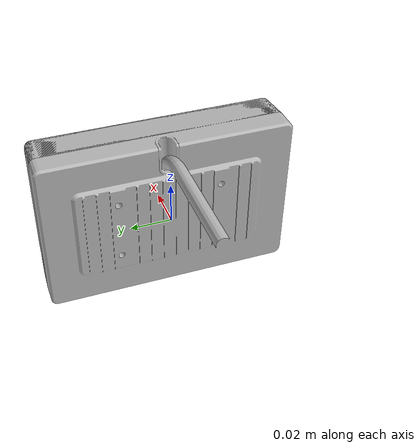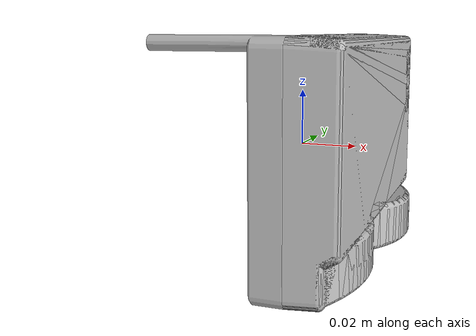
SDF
<?xml version="1.0" ?>
<sdf version="1.11">
  <model name="wl_sonar_3d">
    <link name="base_link">
      <inertial>
        <mass>0.0001</mass>
        <inertia>
          <ixx>1e-09</ixx>
          <ixy>0</ixy>
          <ixz>0</ixz>
          <iyy>1e-09</iyy>
          <iyz>0</iyz>
          <izz>1e-09</izz>
        </inertia>
      </inertial>
    </link>
    <link name="wl_sonar_3d_body">
      <pose relative_to="__model__">0.0 0.0 0.0 3.141592653589793 -0.0 0.0</pose>
      <inertial>
        <pose>0.24293575599225428 1.2722340908156013e-06 1.0526472669276883e-06 0.0 -0.0 0.0</pose>
        <mass>38.040124314824105</mass>
        <inertia>
          <ixx>0.5985140892578029</ixx>
          <ixy>1.0081716923097178e-05</ixy>
          <ixz>1.290151158031393e-05</ixz>
          <iyy>0.6543970334546101</iyy>
          <iyz>1.4321571861179533e-06</iyz>
          <izz>0.826244434569833</izz>
        </inertia>
      </inertial>

      <visual name="wl_sonar_3d_body3_visual">
        <pose relative_to="__model__">0.0 0.0 0.0 3.141592653589793 -0.0 0.0</pose>
        <geometry>
          <mesh>
            <scale>0.01 0.01 0.01</scale>
            <uri>model://meshes/wl_sonar_3d/body3_visual.obj</uri>
          </mesh>
        </geometry>
      </visual>
      <visual name="wl_sonar_3d_body4_visual">
        <pose relative_to="__model__">0.0 0.0 0.0 3.141592653589793 -0.0 0.0</pose>
        <geometry>
          <mesh>
            <scale>0.01 0.01 0.01</scale>
            <uri>model://meshes/wl_sonar_3d/body4_visual.obj</uri>
          </mesh>
        </geometry>
      </visual>

      <collision name="wl_sonar_3d_body3_collision">
        <pose relative_to="__model__">0.024503619305017786 0.0 0.0 3.141592653589793 1.5707963267948966 0</pose>
        <geometry>
          <box>
            <size>0.07995 0.12195 0.023007238610035577</size>
          </box>
        </geometry>
      </collision>
      <collision name="wl_sonar_3d_body4_collision">
        <pose relative_to="__model__">-0.014513909746511683 -0.001782765812776349 -1.0989202708591333e-09 -3.068957276201641 1.57079628737013 0</pose>
        <geometry>
          <box>
            <size>0.0799999976568633 0.12269241652215174 0.09751448382404103</size>
          </box>
        </geometry>
      </collision>
    </link>
    <joint name="base_link_joint" type="fixed">
      <parent>base_link</parent>
      <child>wl_sonar_3d_body</child>
      <axis/>
    </joint>
  </model>
</sdf>
